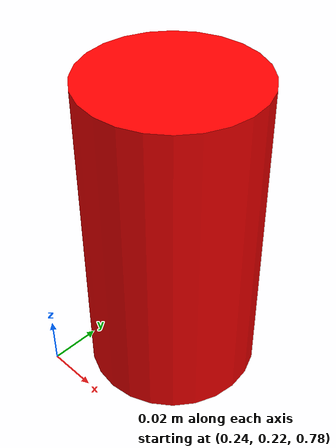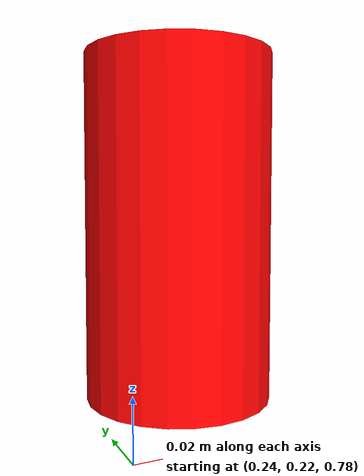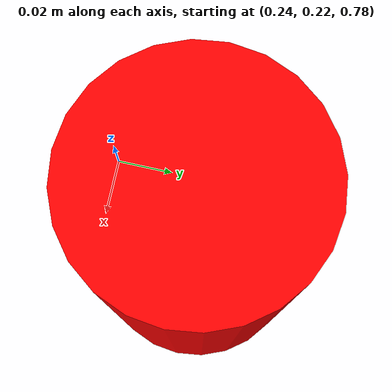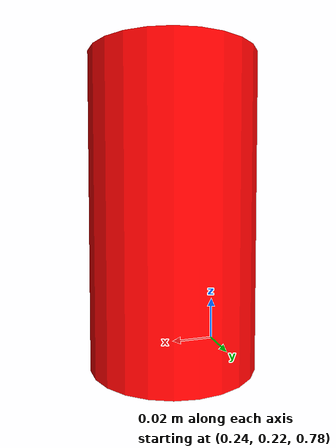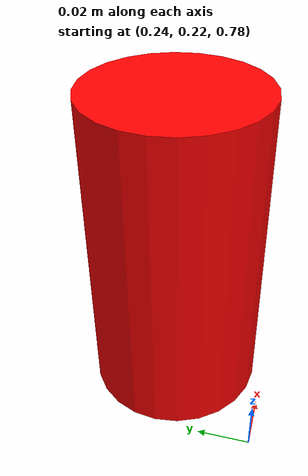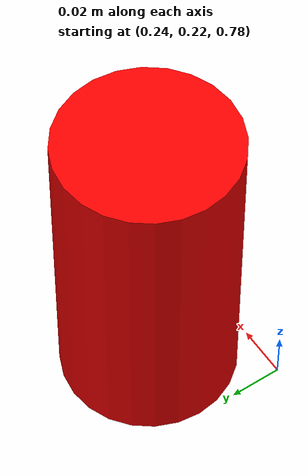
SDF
<?xml version='1.0'?>
<sdf version='1.7'>
  <model name='coke_can'>
    <pose>0.270909 0.256721 0.846173 0 0 0</pose>
    <static>false</static>

    <link name='link'>
      <inertial>
        <mass>2.0</mass>
        <inertia>
          <ixx>0.003</ixx>
          <ixy>0</ixy>
          <ixz>0</ixz>
          <iyy>0.003</iyy>
          <iyz>0</iyz>
          <izz>0.001</izz>
        </inertia>
      </inertial>

      <collision name='collision'>
        <geometry>
          <cylinder>
            <radius>0.033</radius>
            <length>0.122</length>
          </cylinder>
        </geometry>
        <surface>
          <friction>
            <ode>
              <mu>1.0</mu>
              <mu2>1.0</mu2>
            </ode>
          </friction>
        </surface>
      </collision>

      <visual name='visual'>
        <geometry>
          <cylinder>
            <radius>0.033</radius>
            <length>0.122</length>
          </cylinder>
        </geometry>
        <material>
          <ambient>1 0 0 1</ambient>
          <diffuse>1 0 0 1</diffuse>
        </material>
      </visual>

      <self_collide>false</self_collide>
      <enable_wind>false</enable_wind>
      <kinematic>false</kinematic>
    </link>
  </model>
</sdf>
